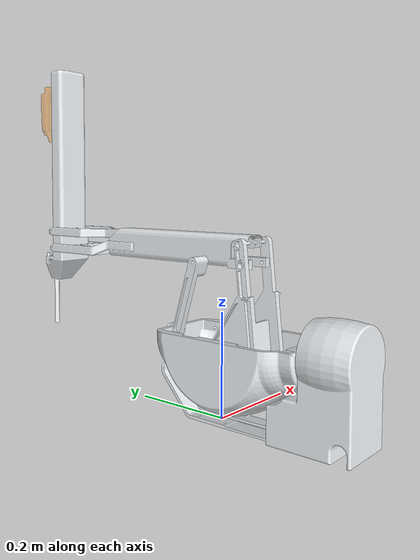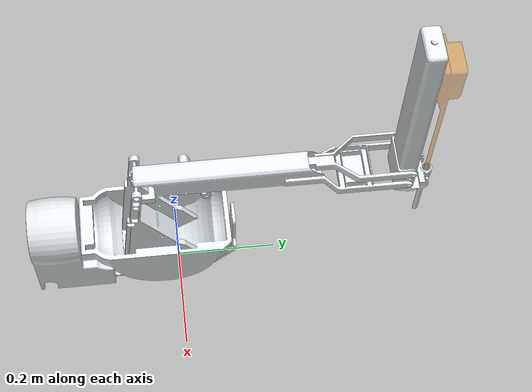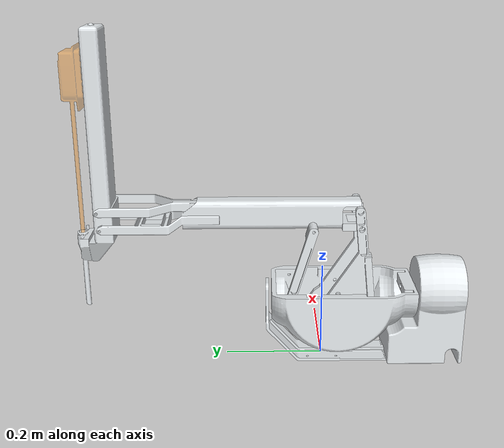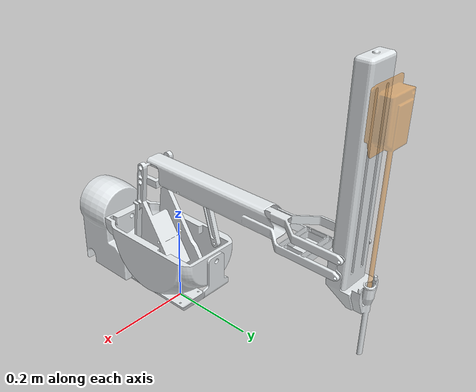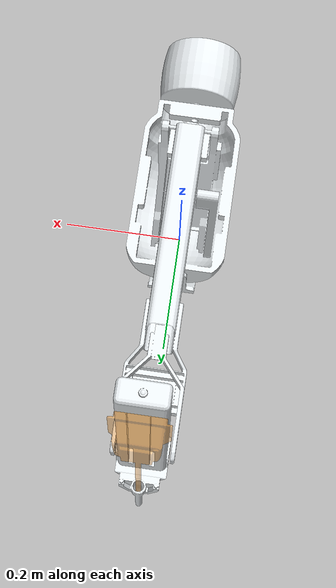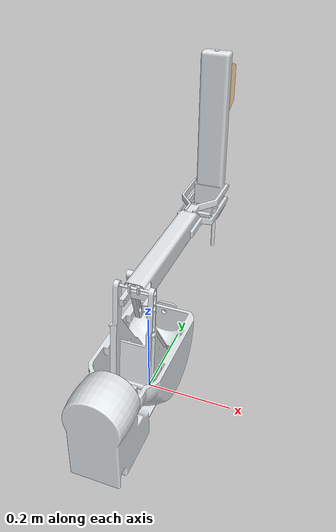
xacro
<?xml version="1.0" ?>
<robot name="master" xmlns:xacro="http://www.ros.org/wiki/xacro">

<xacro:include filename="$(find dvrk_description)/psm/psm.urdf.xacro"/>

<link name="world"/>
<xacro:psm parent_link="world" prefix="psm_" xyz="0 0 0.1524" rpy="0 0 0"/>
<!--xacro:tool_lnd prefix="" parent_link="main_insertion_link" xyz="0 0 0" rpy="0 0 0"/-->

</robot>

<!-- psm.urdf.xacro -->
<robot name="psm" xmlns:xacro="http://www.ros.org/wiki/xacro">

  <xacro:macro name="psm" params=" prefix parent_link xyz rpy">

    <joint name="${prefix}rev_joint" type="revolute">
     <parent link="${parent_link}"/>
     <child link="${prefix}base_link"/>
     <origin rpy="${rpy}" xyz="${xyz}"/>
     <axis xyz="0 0 1"/>
     <limit
       lower="-3.14159"
       upper="3.14159"
       effort="1000"
       velocity="10" />
    </joint>

  <link
    name="${prefix}base_link">
    <inertial>
      <origin
        xyz="0 -0.17016 -0.085607"
        rpy="0 0 0" />
      <mass
        value="2.0161" />
      <inertia
        ixx="0"
        ixy="0"
        ixz="0"
        iyy="0"
        iyz="0"
        izz="0" />
    </inertial>
    <visual>
      <origin
        xyz="0 0 0"
        rpy="0 0 0" />
      <geometry>
        <mesh
          filename="package://dvrk_description/psm/meshes/base_link.STL" />
      </geometry>
      <material
        name="">
        <color
          rgba="0.89804 0.91765 0.92941 1" />
      </material>
    </visual>
    <collision>
      <origin
        xyz="0 0 0"
        rpy="0 0 0" />
      <geometry>
        <mesh
          filename="package://dvrk_description/psm/meshes/base_link.STL" />
      </geometry>
    </collision>
  </link>
  <link
    name="${prefix}yaw_link">
    <inertial>
      <origin
        xyz="-0.038769 0 0.041596"
        rpy="0 0 0" />
      <mass
        value="1.4705" />
      <inertia
        ixx="0"
        ixy="0"
        ixz="0"
        iyy="0"
        iyz="0"
        izz="0" />
    </inertial>
    <visual>
      <origin
        xyz="0 0 0"
        rpy="0 0 0" />
      <geometry>
        <mesh
          filename="package://dvrk_description/psm/meshes/yaw_link.STL" />
      </geometry>
      <material
        name="">
        <color
          rgba="0.89804 0.91765 0.92941 1" />
      </material>
    </visual>
    <collision>
      <origin
        xyz="0 0 0"
        rpy="0 0 0" />
      <geometry>
        <mesh
          filename="package://dvrk_description/psm/meshes/yaw_link.STL" />
      </geometry>
    </collision>
  </link>
  <joint
    name="${prefix}yaw_joint"
    type="revolute">
    <origin
      xyz="0 0 0"
      rpy="1.5708 -1.5708 0" />
    <parent
      link="${prefix}base_link" />
    <child
      link="${prefix}yaw_link" />
    <axis
      xyz="0 0 1" />
    <limit
      lower="-1.605"
      upper="1.5994"
      effort="1000"
	  velocity="10" />
  </joint>
  <link
    name="${prefix}pitch_back_link">
    <inertial>
      <origin
        xyz="-0.011651 -0.036241 0"
        rpy="0 0 0" />
      <mass
        value="0.98494" />
      <inertia
        ixx="0"
        ixy="0"
        ixz="0"
        iyy="0"
        iyz="0"
        izz="0" />
    </inertial>
    <visual>
      <origin
        xyz="0 0 0"
        rpy="0 0 0" />
      <geometry>
        <mesh
          filename="package://dvrk_description/psm/meshes/pitch_back_link.STL" />
      </geometry>
      <material
        name="">
        <color
          rgba="0.89804 0.91765 0.92941 1" />
      </material>
    </visual>
    <collision>
      <origin
        xyz="0 0 0"
        rpy="0 0 0" />
      <geometry>
        <mesh
          filename="package://dvrk_description/psm/meshes/pitch_back_link.STL" />
      </geometry>
    </collision>
  </link>
  <joint
    name="${prefix}pitch_back_joint"
    type="revolute">
    <origin
      xyz="0 0 0.0296"
      rpy="-1.5708 -0.29073 0" />
    <parent
      link="${prefix}yaw_link" />
    <child
      link="${prefix}pitch_back_link" />
    <axis
      xyz="0 0 1" />
	<limit
      lower="-0.93556"
      upper="0.94249"
      effort="1000"
	  velocity="10" />

  </joint>
  <link
    name="${prefix}pitch_bottom_link">
    <inertial>
      <origin
        xyz="0.25683 -0.010348 0"
        rpy="0 0 0" />
      <mass
        value="0.44569" />
      <inertia
        ixx="0"
        ixy="0"
        ixz="0"
        iyy="0"
        iyz="0"
        izz="0" />
    </inertial>
    <visual>
      <origin
        xyz="0 0 0"
        rpy="0 0 0" />
      <geometry>
        <mesh
          filename="package://dvrk_description/psm/meshes/pitch_bottom_link.STL" />
      </geometry>
      <material
        name="">
        <color
          rgba="0.89804 0.91765 0.92941 1" />
      </material>
    </visual>
    <collision>
      <origin
        xyz="0 0 0"
        rpy="0 0 0" />
      <geometry>
        <mesh
          filename="package://dvrk_description/psm/meshes/pitch_bottom_link.STL" />
      </geometry>
    </collision>
  </link>
  <joint
    name="${prefix}pitch_bottom_joint"
    type="revolute">
    <origin
      xyz="0.15 0 0"
      rpy="0 0 1.8615" />
    <parent
      link="${prefix}pitch_back_link" />
    <child
      link="${prefix}pitch_bottom_link" />
    <axis
      xyz="0 0 1" />
    <limit
      lower="-0.94249"
      upper="0.93556"
      effort="1000"
	  velocity="10" />
    <mimic joint="${prefix}pitch_back_joint" multiplier="-1"/>
  </joint>
  <link
    name="${prefix}pitch_end_link">
    <inertial>
      <origin
        xyz="-0.0019293 -0.13613 0"
        rpy="0 0 0" />
      <mass
        value="2.091" />
      <inertia
        ixx="0"
        ixy="0"
        ixz="0"
        iyy="0"
        iyz="0"
        izz="0" />
    </inertial>
    <visual>
      <origin
        xyz="0 0 0"
        rpy="0 0 0" />
      <geometry>
        <mesh
          filename="package://dvrk_description/psm/meshes/pitch_end_link.STL" />
      </geometry>
      <material
        name="">
        <color
          rgba="0.89804 0.91765 0.92941 1" />
      </material>
    </visual>
    <collision>
      <origin
        xyz="0 0 0"
        rpy="0 0 0" />
      <geometry>
        <mesh
          filename="package://dvrk_description/psm/meshes/pitch_end_link.STL" />
      </geometry>
    </collision>
  </link>
  <joint
    name="${prefix}pitch_end_joint"
    type="revolute">
    <origin
      xyz="0.516 0 0"
      rpy="0 0 0" />
    <parent
      link="${prefix}pitch_bottom_link" />
    <child
      link="${prefix}pitch_end_link" />
    <axis
      xyz="0 0 1" />
    <limit
      lower="-0.93556"
      upper="0.94249"
      effort="1000"
	  velocity="10" />
    <mimic joint="${prefix}pitch_back_joint" multiplier="1"/>
  </joint>
  <link
    name="${prefix}main_insertion_link">
    <inertial>
      <origin
        xyz="0.0040563 -0.00010934 0.0098616"
        rpy="0 0 0" />
      <mass
        value="0.22491" />
      <inertia
        ixx="0"
        ixy="0"
        ixz="0"
        iyy="0"
        iyz="0"
        izz="0" />
    </inertial>
    <visual>
      <origin
        xyz="0 0 0"
        rpy="0 0 1.5708" />
      <geometry>
        <mesh
          filename="package://dvrk_description/psm/meshes/main_insertion_link.STL" />
      </geometry>
      <material
        name="">
        <color
          rgba="1 0.55686 0.058824 0.4" />
      </material>
    </visual>
    <collision>
      <origin
        xyz="0 0 0"
        rpy="0 0 0" />
      <geometry>
        <mesh
          filename="package://dvrk_description/psm/meshes/main_insertion_link.STL" />
      </geometry>
    </collision>
  </link>
  <joint
    name="${prefix}main_insertion_joint"
    type="prismatic">
    <origin
      xyz="0.043 -0.28809 0"
      rpy="1.5708 1.5708 3.1416" />
    <parent
      link="${prefix}pitch_end_link" />
    <child
      link="${prefix}main_insertion_link" />
    <axis
      xyz="0 0 1" />
    <limit
      lower="0"
      upper="0.24"
      effort="1000"
	  velocity="1" />

  </joint>
  <link
    name="${prefix}tool_roll_link">
    <inertial>
      <origin
        xyz="0 0 -0.0058234"
        rpy="0 0 0" />
      <mass
        value="0.00033225" />
      <inertia
        ixx="0"
        ixy="0"
        ixz="0"
        iyy="0"
        iyz="0"
        izz="0" />
    </inertial>
    <visual>
      <origin
        xyz="0 0 0"
        rpy="0 0 0" />
      <geometry>
        <mesh
          filename="package://dvrk_description/psm/meshes/tool_roll_link.STL" />
      </geometry>
      <material
        name="">
        <color
          rgba="0.79608 0.82353 0.93725 1" />
      </material>
    </visual>
    <collision>
      <origin
        xyz="0 0 0"
        rpy="0 0 0" />
      <geometry>
        <mesh
          filename="package://dvrk_description/psm/meshes/tool_roll_link.STL" />
      </geometry>
    </collision>
  </link>
  <joint
    name="${prefix}tool_roll_joint"
    type="revolute">
    <origin
      xyz="0 0 0.4162"
      rpy="0 0 -1.5708" />
    <parent
      link="${prefix}main_insertion_link" />
    <child
      link="${prefix}tool_roll_link" />
    <axis
      xyz="0 0 1" />
    <limit
      lower="-3.14159"
      upper="3.14159"
      effort="1000"
      velocity="10" />
  </joint>
  <link
    name="${prefix}tool_pitch_link">
    <inertial>
      <origin
        xyz="0.0035763 0 0"
        rpy="0 0 0" />
      <mass
        value="0.00025784" />
      <inertia
        ixx="0"
        ixy="0"
        ixz="0"
        iyy="0"
        iyz="0"
        izz="0" />
    </inertial>
    <visual>
      <origin
        xyz="0 0 0"
        rpy="0 0 0" />
      <geometry>
        <mesh
          filename="package://dvrk_description/psm/meshes/tool_pitch_link.STL" />
      </geometry>
      <material
        name="">
        <color
          rgba="0.79608 0.82353 0.93725 1" />
      </material>
    </visual>
    <collision>
      <origin
        xyz="0 0 0"
        rpy="0 0 0" />
      <geometry>
        <mesh
          filename="package://dvrk_description/psm/meshes/tool_pitch_link.STL" />
      </geometry>
    </collision>
  </link>
  <joint
    name="${prefix}tool_pitch_joint"
    type="revolute">
    <origin
      xyz="0 0 0"
      rpy="1.5708 -1.5708 3.1416" />
    <parent
      link="${prefix}tool_roll_link" />
    <child
      link="${prefix}tool_pitch_link" />
    <axis
      xyz="0 0 1" />
    <limit
      lower="-1.5708"
      upper="1.5708"
      effort="1000"
      velocity="10" />
  </joint>
  <link
    name="${prefix}tool_yaw_link">
    <inertial>
      <origin
        xyz="0 0 0"
        rpy="0 0 0" />
      <mass
        value="0" />
      <inertia
        ixx="0"
        ixy="0"
        ixz="0"
        iyy="0"
        iyz="0"
        izz="0" />
    </inertial>
    <visual>
      <origin
        xyz="0 0 0"
        rpy="0 0 0" />
      <geometry>
        <mesh
          filename="package://dvrk_description/psm/meshes/tool_yaw_link.STL" />
      </geometry>
      <material
        name="">
        <color
          rgba="0.79608 0.82353 0.93725 1" />
      </material>
    </visual>
    <collision>
      <origin
        xyz="0 0 0"
        rpy="0 0 0" />
      <geometry>
        <mesh
          filename="package://dvrk_description/psm/meshes/tool_yaw_link.STL" />
      </geometry>
    </collision>
  </link>
  <joint
    name="${prefix}tool_yaw_joint"
    type="revolute">
    <origin
      xyz="0.0091 0 0"
      rpy="1.5708 -1.5708 3.1416" />
    <parent
      link="${prefix}tool_pitch_link" />
    <child
      link="${prefix}tool_yaw_link" />
    <axis
      xyz="0 0 1" />
    <limit
      lower="-1.5708"
      upper="1.5708"
      effort="1000"
	  velocity="10" />
  </joint>
  <link
    name="${prefix}tool_gripper1_link">
    <inertial>
      <origin
        xyz="0.00019605 0.001435 -0.00088478"
        rpy="0 0 0" />
      <mass
        value="0" />
      <inertia
        ixx="0"
        ixy="0"
        ixz="0"
        iyy="0"
        iyz="0"
        izz="0" />
    </inertial>
    <visual>
      <origin
        xyz="0 0 0"
        rpy="0 0 0" />
      <geometry>
        <mesh
          filename="package://dvrk_description/psm/meshes/tool_gripper1_link.STL" />
      </geometry>
      <material
        name="">
        <color
          rgba="0.79608 0.82353 0.93725 1" />
      </material>
    </visual>
    <collision>
      <origin
        xyz="0 0 0"
        rpy="0 0 0" />
      <geometry>
        <mesh
          filename="package://dvrk_description/psm/meshes/tool_gripper1_link.STL" />
      </geometry>
    </collision>
  </link>
  <joint
    name="${prefix}tool_gripper1_joint"
    type="revolute">
    <origin
      xyz="0 0 0"
      rpy="0 0 0" />
    <parent
      link="${prefix}tool_yaw_link" />
    <child
      link="${prefix}tool_gripper1_link" />
    <axis
      xyz="0 0 1" />
      <mimic joint="${prefix}tool_gripper2_joint" multiplier="-1"/>
  <limit
      lower="0"
      upper="1"
      effort="0"
	  velocity="0" />
  </joint>

  <link
    name="${prefix}tool_gripper2_link">
    <inertial>
      <origin
        xyz="-0.00019605 0.001435 0.00088478"
        rpy="0 0 0" />
      <mass
        value="0" />
      <inertia
        ixx="0"
        ixy="0"
        ixz="0"
        iyy="0"
        iyz="0"
        izz="0" />
    </inertial>
    <visual>
      <origin
        xyz="0 0 0"
        rpy="0 0 0" />
      <geometry>
        <mesh
          filename="package://dvrk_description/psm/meshes/tool_gripper2_link.STL" />
      </geometry>
      <material
        name="">
        <color
          rgba="0.79608 0.82353 0.93725 1" />
      </material>
    </visual>
    <collision>
      <origin
        xyz="0 0 0"
        rpy="0 0 0" />
      <geometry>
        <mesh
          filename="package://dvrk_description/psm/meshes/tool_gripper2_link.STL" />
      </geometry>
    </collision>
  </link>
  <joint
    name="${prefix}tool_gripper2_joint"
    type="revolute">
    <origin
      xyz="0 0 0"
      rpy="0 0 0" />
    <parent
      link="${prefix}tool_yaw_link" />
    <child
      link="${prefix}tool_gripper2_link" />
    <axis
      xyz="0 0 1" />
    <limit
      lower="0"
      upper="1"
      effort="0"
	  velocity="0" />
  </joint>
  <link
    name="${prefix}pitch_top_link">
    <inertial>
      <origin
        xyz="0.31246 -0.00056566 0"
        rpy="0 0 0" />
      <mass
        value="0.17841" />
      <inertia
        ixx="0"
        ixy="0"
        ixz="0"
        iyy="0"
        iyz="0"
        izz="0" />
    </inertial>
    <visual>
      <origin
        xyz="0 0 0"
        rpy="0 0 0" />
      <geometry>
        <mesh
          filename="package://dvrk_description/psm/meshes/pitch_top_link.STL" />
      </geometry>
      <material
        name="">
        <color
          rgba="0.89804 0.91765 0.92941 1" />
      </material>
    </visual>
    <collision>
      <origin
        xyz="0 0 0"
        rpy="0 0 0" />
      <geometry>
        <mesh
          filename="package://dvrk_description/psm/meshes/pitch_top_link.STL" />
      </geometry>
    </collision>
  </link>
  <joint
    name="${prefix}pitch_top_joint"
    type="revolute">
    <origin
      xyz="0.18366 0.014121 0"
      rpy="0 0 1.8615" />
    <parent
      link="${prefix}pitch_back_link" />
    <child
      link="${prefix}pitch_top_link" />
    <axis
      xyz="0 0 1" />
    <limit
      lower="-0.94249"
      upper="0.93556"
      effort="1000"
	  velocity="10" />
    <mimic joint="${prefix}pitch_back_joint" multiplier="-1"/>
  </joint>
  <link
    name="${prefix}pitch_front_link">
    <inertial>
      <origin
        xyz="0.096269 0 0.047551"
        rpy="0 0 0" />
      <mass
        value="0.074425" />
      <inertia
        ixx="0"
        ixy="0"
        ixz="0"
        iyy="0"
        iyz="0"
        izz="0" />
    </inertial>
    <visual>
      <origin
        xyz="0 0 0"
        rpy="0 0 0" />
      <geometry>
        <mesh
          filename="package://dvrk_description/psm/meshes/pitch_front_link.STL" />
      </geometry>
      <material
        name="">
        <color
          rgba="0.89804 0.91765 0.92941 1" />
      </material>
    </visual>
    <collision>
      <origin
        xyz="0 0 0"
        rpy="0 0 0" />
      <geometry>
        <mesh
          filename="package://dvrk_description/psm/meshes/pitch_front_link.STL" />
      </geometry>
    </collision>
  </link>

  <joint
    name="${prefix}pitch_front_joint"
    type="revolute">
    <origin
      xyz="0 0 -0.0664"
      rpy="-1.5708 -0.29073 0" />
    <parent
      link="${prefix}yaw_link" />
    <child
      link="${prefix}pitch_front_link" />
    <axis
      xyz="0 0 1" />
    <mimic joint="${prefix}pitch_back_joint" multiplier="1"/>
    <limit
      lower="-0.93556"
      upper="0.94249"
      effort="1000"
	  velocity="10" />
  </joint>

  <link name="${prefix}remote_center_link"/>

  <joint name="${prefix}remote_center_joint" type="fixed">
    <parent link="${prefix}base_link"/>
    <child link="${prefix}remote_center_link"/>
    <origin rpy="0 0 0" xyz="0.4864 0 0"/>
  </joint>

  </xacro:macro>
</robot>
